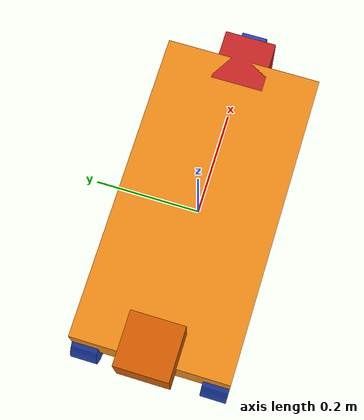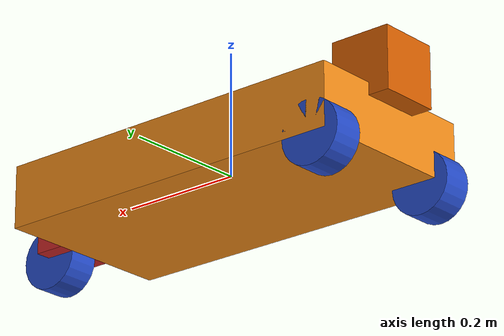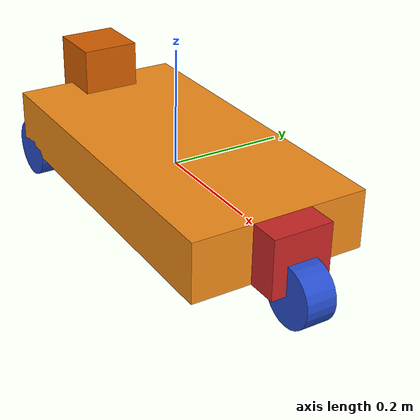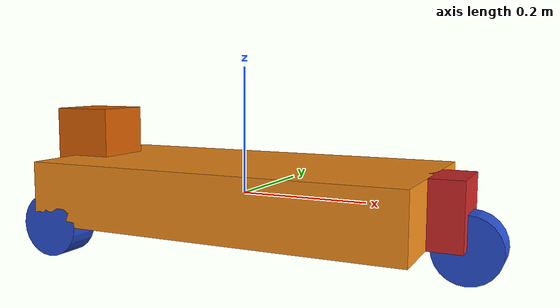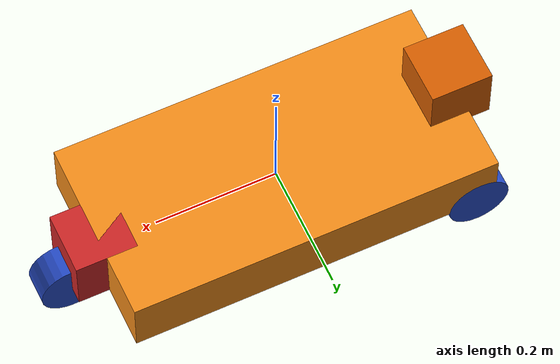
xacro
<?xml version="1.0"?>
<robot xmlns:xacro="http://www.ros.org/wiki/xacro" name="mowgli">

  <material name="black">
    <color rgba="0.0 0.0 0.0 1.0"/>
  </material>
  <material name="blue">
    <color rgba="0.203125 0.23828125 0.28515625 1.0"/>
  </material>
  <material name="green">
    <color rgba="0.0 0.8 0.0 1.0"/>
  </material>
  <material name="grey">
    <color rgba="0.2 0.2 0.2 1.0"/>
  </material>
  <material name="orange">
    <color rgba="1.0 0.423529411765 0.0392156862745 1.0"/>
  </material>
  <material name="brown">
    <color rgba="0.870588235294 0.811764705882 0.764705882353 1.0"/>
  </material>
  <material name="red">
    <color rgba="0.80078125 0.12890625 0.1328125 1.0"/>
  </material>
  <material name="white">
    <color rgba="1.0 1.0 1.0 1.0"/>
  </material>

  <gazebo reference="base_link">
    <material>Gazebo/Orange</material>
  </gazebo>
  <gazebo reference="left_wheel">
    <material>Gazebo/Blue</material>
  </gazebo>
  <gazebo reference="right_wheel">
    <material>Gazebo/Blue</material>
  </gazebo>
  <gazebo reference="front_wheel">
    <material>Gazebo/Blue</material>
  </gazebo>
  <gazebo reference="front_caster_of_wheel">
    <material>Gazebo/Red</material>
  </gazebo>

    <link name="base_link">
        <visual>

            <geometry>
                <box size="0.6 0.3 0.1"/>
            </geometry>

        </visual>
        <collision>
            <geometry>
                <box size="0.6 0.3 0.1"/>
            </geometry>
        </collision>
        <inertial>
            <mass value="1.0"/>
            <inertia ixx="0.015" ixy="0" ixz="0" iyy="0.0375" iyz="0.0" izz="0.0375"/>
        </inertial>
	 </link>

    <link name="front_caster_of_wheel">
        <visual>
            <geometry>
                <box size="0.1 0.1 0.1"/>
            </geometry>

        </visual>

       <collision>
            <geometry>
                <box size="0.1 0.1 0.1"/>
            </geometry>
        </collision>
        <inertial>
            <mass value="0.1"/>
            <inertia ixx="0.00083" ixy="0" ixz="0" iyy="0.00083" iyz="0.0" izz="0.000167"/>
        </inertial>

    </link>

    <joint name="front_caster_of_wheel_joint" type="continuous">
       <axis xyz="0.0 0.0 1"/>
       <parent link="base_link"/>
       <child link="front_caster_of_wheel"/>
       <origin xyz="0.3 0.0 0.0" rpy="0.0 0.0 0.0"/>
    </joint>

    <link name="front_wheel">
        <visual>
            <geometry>
                <cylinder radius="0.05" length="0.05"/>
            </geometry>

        </visual>
        <collision>
            <geometry>
                <cylinder radius="0.05" length="0.05"/>
            </geometry>
        </collision>
        <inertial>
            <mass value="0.1"/>
            <inertia ixx="5.1458e-5" ixy="0" ixz="0" iyy="5.1458e-5" iyz="0.0" izz="6.125e-5"/>
        </inertial>
    </link>

    <joint name="front_wheel_joint" type="continuous">
        <axis xyz="0.0 0.0 1"/>
        <parent link="front_caster_of_wheel"/>
        <child link="front_wheel"/>
        <origin xyz="0.05 0.0 -0.05" rpy="-1.5708 0.0 0.0"/>

    </joint>

   <link name="right_wheel">
        <visual>
            <geometry>
                <cylinder radius="0.05" length="0.05"/>
            </geometry>

        </visual>
        <collision>
            <geometry>
                <cylinder radius="0.05" length="0.05"/>
            </geometry>
        </collision>
        <inertial>
            <mass value="0.1"/>
            <inertia ixx="5.1458e-5" ixy="0" ixz="0" iyy="5.1458e-5" iyz="0.0" izz="6.125e-5"/>
       </inertial>
    </link>

    <joint name="right_wheel_joint" type="continuous">
        <axis xyz="0.0 0.0 1"/>
        <parent link="base_link"/>
        <child link="right_wheel"/>
        <origin xyz="-0.2725 -0.125 -0.05" rpy="-1.5708 0.0 0.0"/>

    </joint>

     <link name="left_wheel">
        <visual>
            <geometry>
                <cylinder radius="0.05" length="0.05"/>
            </geometry>

        </visual>
        <collision>
            <geometry>
                <cylinder radius="0.05" length="0.05"/>
            </geometry>
        </collision>
        <inertial>
            <mass value="0.1"/>
            <inertia ixx="5.1458e-5" ixy="0" ixz="0" iyy="5.1458e-5" iyz="0.0" izz="6.125e-5"/>        </inertial>
    </link>

    <joint name="left_wheel_joint" type="continuous">
        <axis xyz="0.0 0.0 1"/>
        <parent link="base_link"/>
        <child link="left_wheel"/>
        <origin xyz="-0.2725 0.125 -0.05" rpy="-1.5708 0.0 0.0"/>

    </joint>

    <gazebo>
    <plugin name="differential_drive_controller" filename="libgazebo_ros_diff_drive.so">
        <alwaysOn>true</alwaysOn>
        <updateRate>100</updateRate>
        <legacyMode>false</legacyMode>
        <leftJoint>left_wheel_joint</leftJoint>
        <rightJoint>right_wheel_joint</rightJoint>
        <wheelSeparation>0.25</wheelSeparation>
        <wheelDiameter>0.07</wheelDiameter>
        <torque>5</torque>
        <commandTopic>cmd_vel</commandTopic>
        <odometryTopic>odom</odometryTopic>
        <odometryFrame>odom</odometryFrame>
        <robotBaseFrame>base_link</robotBaseFrame>
        <publishWheelTF>false</publishWheelTF>
        <publishWheelJointState>false</publishWheelJointState>
        <rosDebugLevel>na</rosDebugLevel>
        <wheelAcceleration>0</wheelAcceleration>
        <wheelTorque>5</wheelTorque>
        <odometrySource>world</odometrySource>
        <publishTf>1</publishTf>
        <publishOdomTF>true</publishOdomTF>

    </plugin>
</gazebo>

       <gazebo>
        <plugin name="joint_state_publisher"
                filename="libgazebo_ros_joint_state_publisher.so">
                <updateRate>100</updateRate>
            <jointName>front_caster_of_wheel_joint, front_wheel_joint</jointName>
        </plugin>
    </gazebo>

    <link name="laser_scanner">
        <visual>
            <geometry>
                <box size="0.1 0.1 0.1"/>
            </geometry>
        </visual>

        <collision>
            <geometry>
                <box size="0.1 0.1 0.1"/>
            </geometry>
        </collision>

        <inertial>
            <mass value="1e-5"/>
            <inertia ixx="1e-6" ixy="0" ixz="0.0" iyy="1e-6" iyz="0.0" izz="1e-6"/>
        </inertial>
    </link>

    <joint name="laser_scanner_joint" type="fixed">
        <axis xyz="0.0 1 0.0"/>
        <parent link="base_link"/>
        <child link="laser_scanner"/>
        <origin xyz="-0.285 0.0 0.08" rpy="0.0 0.0 0.0"/>
    </joint>

    <gazebo reference="laser_scanner">
    <sensor type="ray" name="head_hokuyo_sensor">
      <pose>0 0 0 0 0 0</pose>
      <visualize>true</visualize>
      <update_rate>20</update_rate>
      <ray>
        <scan>
          <horizontal>
            <samples>1440</samples>
            <resolution>1</resolution>
            <min_angle>-2.356</min_angle>
            <max_angle>2.356</max_angle>
          </horizontal>
        </scan>
        <range>
          <min>0.10</min>
          <max>30.0</max>
          <resolution>0.01</resolution>
        </range>
        <noise>
          <type>gaussian</type>
          <mean>0.0</mean>
          <stddev>0.01</stddev>
        </noise>
      </ray>
      <plugin name="gazebo_ros_head_hokuyo_controller" filename="libgazebo_ros_laser.so">
        <topicName>/scan</topicName>
        <frameName>laser_scanner</frameName>
      </plugin>
    </sensor>
  </gazebo>

</robot>
